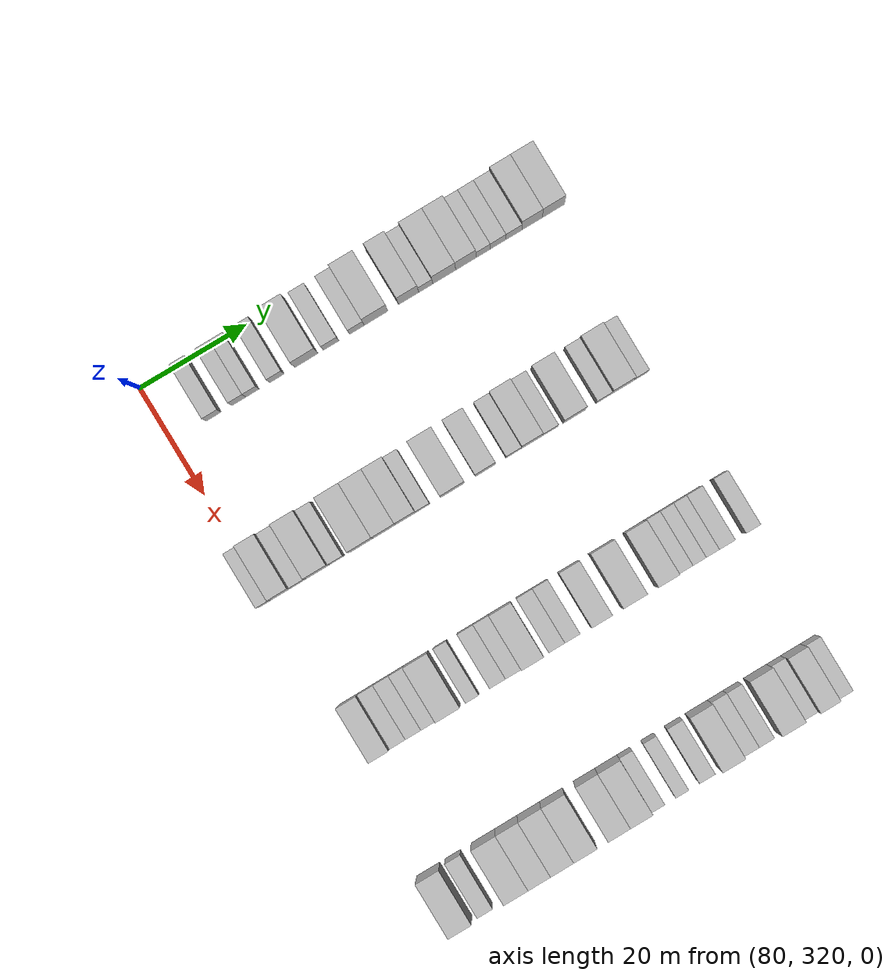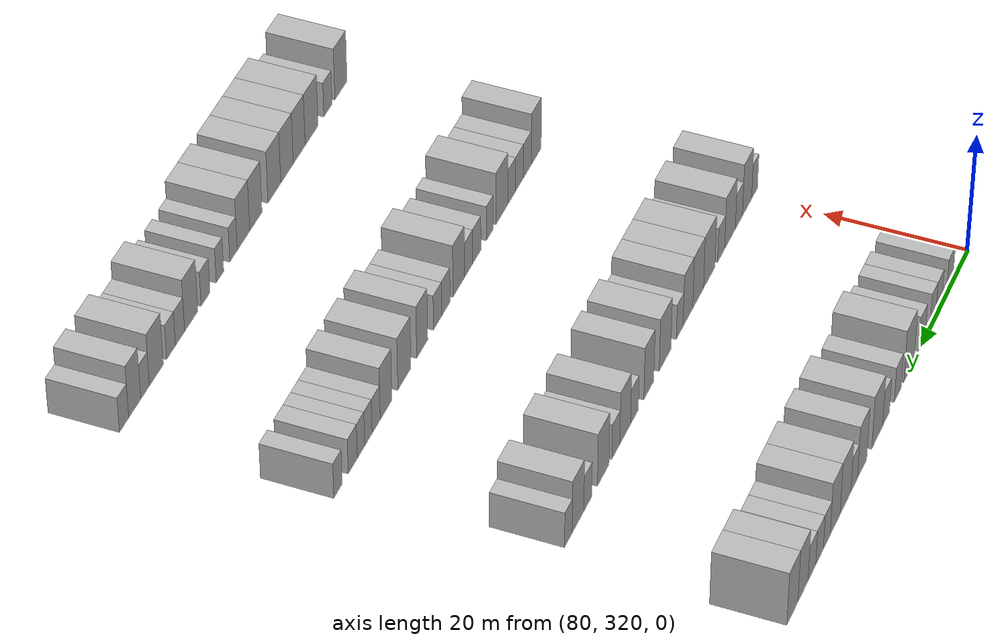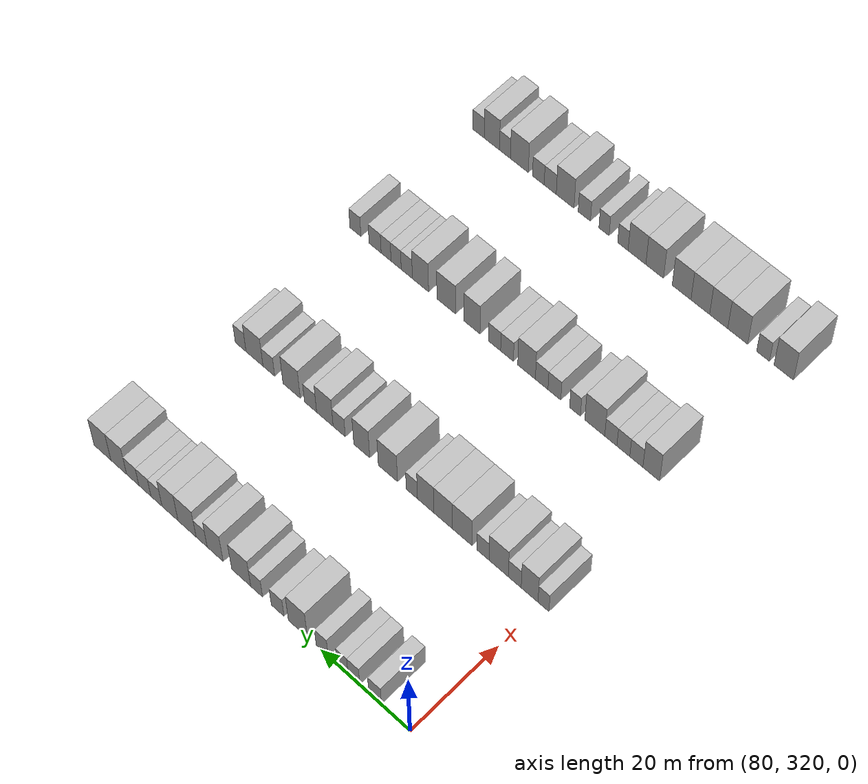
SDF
<sdf version="1.6">
 <world name="default">
  <model name="building_653">
   <static>1</static>
   <pose>85.0000 327.8629 0 0.000000 0.000000 0.000000</pose>
   <link name="link">
    <pose>0 0 3.00 0 0 0</pose>
    <collision name="collision"><geometry><box><size>10.0000 2.8039 6.0000</size></box></geometry></collision>
    <visual name="visual">
     <cast_shadows>0</cast_shadows>
     <geometry><box><size>10.0000 2.8039 6.0000</size></box></geometry>
     <material>
      <script>
       <uri>model://HANNAS_wall/materials/scripts</uri>
       <uri>model://HANNAS_wall/materials/textures</uri>
       <name>vrc/HANNAS_wall</name>
      </script>
     </material>
    </visual>
   </link>
  </model>
  <model name="building_654">
   <static>1</static>
   <pose>85.0000 332.5841 0 0.000000 0.000000 0.000000</pose>
   <link name="link">
    <pose>0 0 3.00 0 0 0</pose>
    <collision name="collision"><geometry><box><size>10.0000 2.6385 6.0000</size></box></geometry></collision>
    <visual name="visual">
     <cast_shadows>0</cast_shadows>
     <geometry><box><size>10.0000 2.6385 6.0000</size></box></geometry>
     <material>
      <script>
       <uri>model://HANNAS_wall/materials/scripts</uri>
       <uri>model://HANNAS_wall/materials/textures</uri>
       <name>vrc/HANNAS_wall</name>
      </script>
     </material>
    </visual>
   </link>
  </model>
  <model name="building_655">
   <static>1</static>
   <pose>85.0000 335.1400 0 0.000000 0.000000 0.000000</pose>
   <link name="link">
    <pose>0 0 3.00 0 0 0</pose>
    <collision name="collision"><geometry><box><size>10.0000 2.4734 6.0000</size></box></geometry></collision>
    <visual name="visual">
     <cast_shadows>0</cast_shadows>
     <geometry><box><size>10.0000 2.4734 6.0000</size></box></geometry>
     <material>
      <script>
       <uri>model://HANNAS_wall/materials/scripts</uri>
       <uri>model://HANNAS_wall/materials/textures</uri>
       <name>vrc/HANNAS_wall</name>
      </script>
     </material>
    </visual>
   </link>
  </model>
  <model name="building_656">
   <static>1</static>
   <pose>85.0000 339.7246 0 0.000000 0.000000 0.000000</pose>
   <link name="link">
    <pose>0 0 3.00 0 0 0</pose>
    <collision name="collision"><geometry><box><size>10.0000 2.6957 6.0000</size></box></geometry></collision>
    <visual name="visual">
     <cast_shadows>0</cast_shadows>
     <geometry><box><size>10.0000 2.6957 6.0000</size></box></geometry>
     <material>
      <script>
       <uri>model://HANNAS_wall/materials/scripts</uri>
       <uri>model://HANNAS_wall/materials/textures</uri>
       <name>vrc/HANNAS_wall</name>
      </script>
     </material>
    </visual>
   </link>
  </model>
  <model name="building_657">
   <static>1</static>
   <pose>85.0000 345.2438 0 0.000000 0.000000 0.000000</pose>
   <link name="link">
    <pose>0 0 4.50 0 0 0</pose>
    <collision name="collision"><geometry><box><size>10.0000 4.3428 9.0000</size></box></geometry></collision>
    <visual name="visual">
     <cast_shadows>0</cast_shadows>
     <geometry><box><size>10.0000 4.3428 9.0000</size></box></geometry>
     <material>
      <script>
       <uri>model://HANNAS_wall/materials/scripts</uri>
       <uri>model://HANNAS_wall/materials/textures</uri>
       <name>vrc/HANNAS_wall</name>
      </script>
     </material>
    </visual>
   </link>
  </model>
  <model name="building_658">
   <static>1</static>
   <pose>85.0000 349.8824 0 0.000000 0.000000 0.000000</pose>
   <link name="link">
    <pose>0 0 3.00 0 0 0</pose>
    <collision name="collision"><geometry><box><size>10.0000 2.9343 6.0000</size></box></geometry></collision>
    <visual name="visual">
     <cast_shadows>0</cast_shadows>
     <geometry><box><size>10.0000 2.9343 6.0000</size></box></geometry>
     <material>
      <script>
       <uri>model://HANNAS_wall/materials/scripts</uri>
       <uri>model://HANNAS_wall/materials/textures</uri>
       <name>vrc/HANNAS_wall</name>
      </script>
     </material>
    </visual>
   </link>
  </model>
  <model name="building_659">
   <static>1</static>
   <pose>85.0000 354.7335 0 0.000000 0.000000 0.000000</pose>
   <link name="link">
    <pose>0 0 3.00 0 0 0</pose>
    <collision name="collision"><geometry><box><size>10.0000 2.7680 6.0000</size></box></geometry></collision>
    <visual name="visual">
     <cast_shadows>0</cast_shadows>
     <geometry><box><size>10.0000 2.7680 6.0000</size></box></geometry>
     <material>
      <script>
       <uri>model://HANNAS_wall/materials/scripts</uri>
       <uri>model://HANNAS_wall/materials/textures</uri>
       <name>vrc/HANNAS_wall</name>
      </script>
     </material>
    </visual>
   </link>
  </model>
  <model name="building_660">
   <static>1</static>
   <pose>85.0000 358.3324 0 0.000000 0.000000 0.000000</pose>
   <link name="link">
    <pose>0 0 4.50 0 0 0</pose>
    <collision name="collision"><geometry><box><size>10.0000 4.4299 9.0000</size></box></geometry></collision>
    <visual name="visual">
     <cast_shadows>0</cast_shadows>
     <geometry><box><size>10.0000 4.4299 9.0000</size></box></geometry>
     <material>
      <script>
       <uri>model://HANNAS_wall/materials/scripts</uri>
       <uri>model://HANNAS_wall/materials/textures</uri>
       <name>vrc/HANNAS_wall</name>
      </script>
     </material>
    </visual>
   </link>
  </model>
  <model name="building_661">
   <static>1</static>
   <pose>85.0000 364.4345 0 0.000000 0.000000 0.000000</pose>
   <link name="link">
    <pose>0 0 4.50 0 0 0</pose>
    <collision name="collision"><geometry><box><size>10.0000 3.7742 9.0000</size></box></geometry></collision>
    <visual name="visual">
     <cast_shadows>0</cast_shadows>
     <geometry><box><size>10.0000 3.7742 9.0000</size></box></geometry>
     <material>
      <script>
       <uri>model://HANNAS_wall/materials/scripts</uri>
       <uri>model://HANNAS_wall/materials/textures</uri>
       <name>vrc/HANNAS_wall</name>
      </script>
     </material>
    </visual>
   </link>
  </model>
  <model name="building_662">
   <static>1</static>
   <pose>85.0000 367.6362 0 0.000000 0.000000 0.000000</pose>
   <link name="link">
    <pose>0 0 3.00 0 0 0</pose>
    <collision name="collision"><geometry><box><size>10.0000 2.6291 6.0000</size></box></geometry></collision>
    <visual name="visual">
     <cast_shadows>0</cast_shadows>
     <geometry><box><size>10.0000 2.6291 6.0000</size></box></geometry>
     <material>
      <script>
       <uri>model://HANNAS_wall/materials/scripts</uri>
       <uri>model://HANNAS_wall/materials/textures</uri>
       <name>vrc/HANNAS_wall</name>
      </script>
     </material>
    </visual>
   </link>
  </model>
  <model name="building_663">
   <static>1</static>
   <pose>85.0000 371.0983 0 0.000000 0.000000 0.000000</pose>
   <link name="link">
    <pose>0 0 4.50 0 0 0</pose>
    <collision name="collision"><geometry><box><size>10.0000 4.2952 9.0000</size></box></geometry></collision>
    <visual name="visual">
     <cast_shadows>0</cast_shadows>
     <geometry><box><size>10.0000 4.2952 9.0000</size></box></geometry>
     <material>
      <script>
       <uri>model://HANNAS_wall/materials/scripts</uri>
       <uri>model://HANNAS_wall/materials/textures</uri>
       <name>vrc/HANNAS_wall</name>
      </script>
     </material>
    </visual>
   </link>
  </model>
  <model name="building_664">
   <static>1</static>
   <pose>85.0000 375.1570 0 0.000000 0.000000 0.000000</pose>
   <link name="link">
    <pose>0 0 4.50 0 0 0</pose>
    <collision name="collision"><geometry><box><size>10.0000 3.8223 9.0000</size></box></geometry></collision>
    <visual name="visual">
     <cast_shadows>0</cast_shadows>
     <geometry><box><size>10.0000 3.8223 9.0000</size></box></geometry>
     <material>
      <script>
       <uri>model://HANNAS_wall/materials/scripts</uri>
       <uri>model://HANNAS_wall/materials/textures</uri>
       <name>vrc/HANNAS_wall</name>
      </script>
     </material>
    </visual>
   </link>
  </model>
  <model name="building_665">
   <static>1</static>
   <pose>85.0000 378.4080 0 0.000000 0.000000 0.000000</pose>
   <link name="link">
    <pose>0 0 3.00 0 0 0</pose>
    <collision name="collision"><geometry><box><size>10.0000 2.6797 6.0000</size></box></geometry></collision>
    <visual name="visual">
     <cast_shadows>0</cast_shadows>
     <geometry><box><size>10.0000 2.6797 6.0000</size></box></geometry>
     <material>
      <script>
       <uri>model://HANNAS_wall/materials/scripts</uri>
       <uri>model://HANNAS_wall/materials/textures</uri>
       <name>vrc/HANNAS_wall</name>
      </script>
     </material>
    </visual>
   </link>
  </model>
  <model name="building_666">
   <static>1</static>
   <pose>85.0000 381.2136 0 0.000000 0.000000 0.000000</pose>
   <link name="link">
    <pose>0 0 3.00 0 0 0</pose>
    <collision name="collision"><geometry><box><size>10.0000 2.9314 6.0000</size></box></geometry></collision>
    <visual name="visual">
     <cast_shadows>0</cast_shadows>
     <geometry><box><size>10.0000 2.9314 6.0000</size></box></geometry>
     <material>
      <script>
       <uri>model://HANNAS_wall/materials/scripts</uri>
       <uri>model://HANNAS_wall/materials/textures</uri>
       <name>vrc/HANNAS_wall</name>
      </script>
     </material>
    </visual>
   </link>
  </model>
  <model name="building_667">
   <static>1</static>
   <pose>85.0000 384.1634 0 0.000000 0.000000 0.000000</pose>
   <link name="link">
    <pose>0 0 3.00 0 0 0</pose>
    <collision name="collision"><geometry><box><size>10.0000 2.9683 6.0000</size></box></geometry></collision>
    <visual name="visual">
     <cast_shadows>0</cast_shadows>
     <geometry><box><size>10.0000 2.9683 6.0000</size></box></geometry>
     <material>
      <script>
       <uri>model://HANNAS_wall/materials/scripts</uri>
       <uri>model://HANNAS_wall/materials/textures</uri>
       <name>vrc/HANNAS_wall</name>
      </script>
     </material>
    </visual>
   </link>
  </model>
  <model name="building_668">
   <static>1</static>
   <pose>85.0000 387.5630 0 0.000000 0.000000 0.000000</pose>
   <link name="link">
    <pose>0 0 4.50 0 0 0</pose>
    <collision name="collision"><geometry><box><size>10.0000 3.8309 9.0000</size></box></geometry></collision>
    <visual name="visual">
     <cast_shadows>0</cast_shadows>
     <geometry><box><size>10.0000 3.8309 9.0000</size></box></geometry>
     <material>
      <script>
       <uri>model://HANNAS_wall/materials/scripts</uri>
       <uri>model://HANNAS_wall/materials/textures</uri>
       <name>vrc/HANNAS_wall</name>
      </script>
     </material>
    </visual>
   </link>
  </model>
  <model name="building_669">
   <static>1</static>
   <pose>85.0000 391.5540 0 0.000000 0.000000 0.000000</pose>
   <link name="link">
    <pose>0 0 4.50 0 0 0</pose>
    <collision name="collision"><geometry><box><size>10.0000 4.1510 9.0000</size></box></geometry></collision>
    <visual name="visual">
     <cast_shadows>0</cast_shadows>
     <geometry><box><size>10.0000 4.1510 9.0000</size></box></geometry>
     <material>
      <script>
       <uri>model://HANNAS_wall/materials/scripts</uri>
       <uri>model://HANNAS_wall/materials/textures</uri>
       <name>vrc/HANNAS_wall</name>
      </script>
     </material>
    </visual>
   </link>
  </model>
  <model name="building_874">
   <static>1</static>
   <pose>115.0000 319.4420 0 0.000000 0.000000 0.000000</pose>
   <link name="link">
    <pose>0 0 3.00 0 0 0</pose>
    <collision name="collision"><geometry><box><size>10.0000 2.4111 6.0000</size></box></geometry></collision>
    <visual name="visual">
     <cast_shadows>0</cast_shadows>
     <geometry><box><size>10.0000 2.4111 6.0000</size></box></geometry>
     <material>
      <script>
       <uri>model://HANNAS_wall/materials/scripts</uri>
       <uri>model://HANNAS_wall/materials/textures</uri>
       <name>vrc/HANNAS_wall</name>
      </script>
     </material>
    </visual>
   </link>
  </model>
  <model name="building_875">
   <static>1</static>
   <pose>115.0000 322.5029 0 0.000000 0.000000 0.000000</pose>
   <link name="link">
    <pose>0 0 4.50 0 0 0</pose>
    <collision name="collision"><geometry><box><size>10.0000 3.7107 9.0000</size></box></geometry></collision>
    <visual name="visual">
     <cast_shadows>0</cast_shadows>
     <geometry><box><size>10.0000 3.7107 9.0000</size></box></geometry>
     <material>
      <script>
       <uri>model://HANNAS_wall/materials/scripts</uri>
       <uri>model://HANNAS_wall/materials/textures</uri>
       <name>vrc/HANNAS_wall</name>
      </script>
     </material>
    </visual>
   </link>
  </model>
  <model name="building_876">
   <static>1</static>
   <pose>115.0000 325.7823 0 0.000000 0.000000 0.000000</pose>
   <link name="link">
    <pose>0 0 3.00 0 0 0</pose>
    <collision name="collision"><geometry><box><size>10.0000 2.8481 6.0000</size></box></geometry></collision>
    <visual name="visual">
     <cast_shadows>0</cast_shadows>
     <geometry><box><size>10.0000 2.8481 6.0000</size></box></geometry>
     <material>
      <script>
       <uri>model://HANNAS_wall/materials/scripts</uri>
       <uri>model://HANNAS_wall/materials/textures</uri>
       <name>vrc/HANNAS_wall</name>
      </script>
     </material>
    </visual>
   </link>
  </model>
  <model name="building_877">
   <static>1</static>
   <pose>115.0000 329.3535 0 0.000000 0.000000 0.000000</pose>
   <link name="link">
    <pose>0 0 4.50 0 0 0</pose>
    <collision name="collision"><geometry><box><size>10.0000 4.2943 9.0000</size></box></geometry></collision>
    <visual name="visual">
     <cast_shadows>0</cast_shadows>
     <geometry><box><size>10.0000 4.2943 9.0000</size></box></geometry>
     <material>
      <script>
       <uri>model://HANNAS_wall/materials/scripts</uri>
       <uri>model://HANNAS_wall/materials/textures</uri>
       <name>vrc/HANNAS_wall</name>
      </script>
     </material>
    </visual>
   </link>
  </model>
  <model name="building_878">
   <static>1</static>
   <pose>115.0000 332.8965 0 0.000000 0.000000 0.000000</pose>
   <link name="link">
    <pose>0 0 3.00 0 0 0</pose>
    <collision name="collision"><geometry><box><size>10.0000 2.7916 6.0000</size></box></geometry></collision>
    <visual name="visual">
     <cast_shadows>0</cast_shadows>
     <geometry><box><size>10.0000 2.7916 6.0000</size></box></geometry>
     <material>
      <script>
       <uri>model://HANNAS_wall/materials/scripts</uri>
       <uri>model://HANNAS_wall/materials/textures</uri>
       <name>vrc/HANNAS_wall</name>
      </script>
     </material>
    </visual>
   </link>
  </model>
  <model name="building_879">
   <static>1</static>
   <pose>115.0000 337.5282 0 0.000000 0.000000 0.000000</pose>
   <link name="link">
    <pose>0 0 4.50 0 0 0</pose>
    <collision name="collision"><geometry><box><size>10.0000 4.4718 9.0000</size></box></geometry></collision>
    <visual name="visual">
     <cast_shadows>0</cast_shadows>
     <geometry><box><size>10.0000 4.4718 9.0000</size></box></geometry>
     <material>
      <script>
       <uri>model://HANNAS_wall/materials/scripts</uri>
       <uri>model://HANNAS_wall/materials/textures</uri>
       <name>vrc/HANNAS_wall</name>
      </script>
     </material>
    </visual>
   </link>
  </model>
  <model name="building_880">
   <static>1</static>
   <pose>115.0000 341.8726 0 0.000000 0.000000 0.000000</pose>
   <link name="link">
    <pose>0 0 4.50 0 0 0</pose>
    <collision name="collision"><geometry><box><size>10.0000 4.2169 9.0000</size></box></geometry></collision>
    <visual name="visual">
     <cast_shadows>0</cast_shadows>
     <geometry><box><size>10.0000 4.2169 9.0000</size></box></geometry>
     <material>
      <script>
       <uri>model://HANNAS_wall/materials/scripts</uri>
       <uri>model://HANNAS_wall/materials/textures</uri>
       <name>vrc/HANNAS_wall</name>
      </script>
     </material>
    </visual>
   </link>
  </model>
  <model name="building_881">
   <static>1</static>
   <pose>115.0000 345.8553 0 0.000000 0.000000 0.000000</pose>
   <link name="link">
    <pose>0 0 4.50 0 0 0</pose>
    <collision name="collision"><geometry><box><size>10.0000 3.7484 9.0000</size></box></geometry></collision>
    <visual name="visual">
     <cast_shadows>0</cast_shadows>
     <geometry><box><size>10.0000 3.7484 9.0000</size></box></geometry>
     <material>
      <script>
       <uri>model://HANNAS_wall/materials/scripts</uri>
       <uri>model://HANNAS_wall/materials/textures</uri>
       <name>vrc/HANNAS_wall</name>
      </script>
     </material>
    </visual>
   </link>
  </model>
  <model name="building_882">
   <static>1</static>
   <pose>115.0000 349.0259 0 0.000000 0.000000 0.000000</pose>
   <link name="link">
    <pose>0 0 3.00 0 0 0</pose>
    <collision name="collision"><geometry><box><size>10.0000 2.5928 6.0000</size></box></geometry></collision>
    <visual name="visual">
     <cast_shadows>0</cast_shadows>
     <geometry><box><size>10.0000 2.5928 6.0000</size></box></geometry>
     <material>
      <script>
       <uri>model://HANNAS_wall/materials/scripts</uri>
       <uri>model://HANNAS_wall/materials/textures</uri>
       <name>vrc/HANNAS_wall</name>
      </script>
     </material>
    </visual>
   </link>
  </model>
  <model name="building_883">
   <static>1</static>
   <pose>115.0000 354.5537 0 0.000000 0.000000 0.000000</pose>
   <link name="link">
    <pose>0 0 4.50 0 0 0</pose>
    <collision name="collision"><geometry><box><size>10.0000 4.4627 9.0000</size></box></geometry></collision>
    <visual name="visual">
     <cast_shadows>0</cast_shadows>
     <geometry><box><size>10.0000 4.4627 9.0000</size></box></geometry>
     <material>
      <script>
       <uri>model://HANNAS_wall/materials/scripts</uri>
       <uri>model://HANNAS_wall/materials/textures</uri>
       <name>vrc/HANNAS_wall</name>
      </script>
     </material>
    </visual>
   </link>
  </model>
  <model name="building_884">
   <static>1</static>
   <pose>115.0000 360.6563 0 0.000000 0.000000 0.000000</pose>
   <link name="link">
    <pose>0 0 4.50 0 0 0</pose>
    <collision name="collision"><geometry><box><size>10.0000 3.7427 9.0000</size></box></geometry></collision>
    <visual name="visual">
     <cast_shadows>0</cast_shadows>
     <geometry><box><size>10.0000 3.7427 9.0000</size></box></geometry>
     <material>
      <script>
       <uri>model://HANNAS_wall/materials/scripts</uri>
       <uri>model://HANNAS_wall/materials/textures</uri>
       <name>vrc/HANNAS_wall</name>
      </script>
     </material>
    </visual>
   </link>
  </model>
  <model name="building_885">
   <static>1</static>
   <pose>115.0000 365.9667 0 0.000000 0.000000 0.000000</pose>
   <link name="link">
    <pose>0 0 3.00 0 0 0</pose>
    <collision name="collision"><geometry><box><size>10.0000 2.8780 6.0000</size></box></geometry></collision>
    <visual name="visual">
     <cast_shadows>0</cast_shadows>
     <geometry><box><size>10.0000 2.8780 6.0000</size></box></geometry>
     <material>
      <script>
       <uri>model://HANNAS_wall/materials/scripts</uri>
       <uri>model://HANNAS_wall/materials/textures</uri>
       <name>vrc/HANNAS_wall</name>
      </script>
     </material>
    </visual>
   </link>
  </model>
  <model name="building_886">
   <static>1</static>
   <pose>115.0000 369.3741 0 0.000000 0.000000 0.000000</pose>
   <link name="link">
    <pose>0 0 4.50 0 0 0</pose>
    <collision name="collision"><geometry><box><size>10.0000 3.9368 9.0000</size></box></geometry></collision>
    <visual name="visual">
     <cast_shadows>0</cast_shadows>
     <geometry><box><size>10.0000 3.9368 9.0000</size></box></geometry>
     <material>
      <script>
       <uri>model://HANNAS_wall/materials/scripts</uri>
       <uri>model://HANNAS_wall/materials/textures</uri>
       <name>vrc/HANNAS_wall</name>
      </script>
     </material>
    </visual>
   </link>
  </model>
  <model name="building_887">
   <static>1</static>
   <pose>115.0000 372.7899 0 0.000000 0.000000 0.000000</pose>
   <link name="link">
    <pose>0 0 3.00 0 0 0</pose>
    <collision name="collision"><geometry><box><size>10.0000 2.8949 6.0000</size></box></geometry></collision>
    <visual name="visual">
     <cast_shadows>0</cast_shadows>
     <geometry><box><size>10.0000 2.8949 6.0000</size></box></geometry>
     <material>
      <script>
       <uri>model://HANNAS_wall/materials/scripts</uri>
       <uri>model://HANNAS_wall/materials/textures</uri>
       <name>vrc/HANNAS_wall</name>
      </script>
     </material>
    </visual>
   </link>
  </model>
  <model name="building_888">
   <static>1</static>
   <pose>115.0000 377.3226 0 0.000000 0.000000 0.000000</pose>
   <link name="link">
    <pose>0 0 4.50 0 0 0</pose>
    <collision name="collision"><geometry><box><size>10.0000 4.1705 9.0000</size></box></geometry></collision>
    <visual name="visual">
     <cast_shadows>0</cast_shadows>
     <geometry><box><size>10.0000 4.1705 9.0000</size></box></geometry>
     <material>
      <script>
       <uri>model://HANNAS_wall/materials/scripts</uri>
       <uri>model://HANNAS_wall/materials/textures</uri>
       <name>vrc/HANNAS_wall</name>
      </script>
     </material>
    </visual>
   </link>
  </model>
  <model name="building_889">
   <static>1</static>
   <pose>115.0000 382.8236 0 0.000000 0.000000 0.000000</pose>
   <link name="link">
    <pose>0 0 3.00 0 0 0</pose>
    <collision name="collision"><geometry><box><size>10.0000 2.8314 6.0000</size></box></geometry></collision>
    <visual name="visual">
     <cast_shadows>0</cast_shadows>
     <geometry><box><size>10.0000 2.8314 6.0000</size></box></geometry>
     <material>
      <script>
       <uri>model://HANNAS_wall/materials/scripts</uri>
       <uri>model://HANNAS_wall/materials/textures</uri>
       <name>vrc/HANNAS_wall</name>
      </script>
     </material>
    </visual>
   </link>
  </model>
  <model name="building_890">
   <static>1</static>
   <pose>115.0000 386.3095 0 0.000000 0.000000 0.000000</pose>
   <link name="link">
    <pose>0 0 4.50 0 0 0</pose>
    <collision name="collision"><geometry><box><size>10.0000 4.1405 9.0000</size></box></geometry></collision>
    <visual name="visual">
     <cast_shadows>0</cast_shadows>
     <geometry><box><size>10.0000 4.1405 9.0000</size></box></geometry>
     <material>
      <script>
       <uri>model://HANNAS_wall/materials/scripts</uri>
       <uri>model://HANNAS_wall/materials/textures</uri>
       <name>vrc/HANNAS_wall</name>
      </script>
     </material>
    </visual>
   </link>
  </model>
  <model name="building_891">
   <static>1</static>
   <pose>115.0000 389.6946 0 0.000000 0.000000 0.000000</pose>
   <link name="link">
    <pose>0 0 3.00 0 0 0</pose>
    <collision name="collision"><geometry><box><size>10.0000 2.6297 6.0000</size></box></geometry></collision>
    <visual name="visual">
     <cast_shadows>0</cast_shadows>
     <geometry><box><size>10.0000 2.6297 6.0000</size></box></geometry>
     <material>
      <script>
       <uri>model://HANNAS_wall/materials/scripts</uri>
       <uri>model://HANNAS_wall/materials/textures</uri>
       <name>vrc/HANNAS_wall</name>
      </script>
     </material>
    </visual>
   </link>
  </model>
  <model name="building_1117">
   <static>1</static>
   <pose>145.0000 322.9769 0 0.000000 0.000000 0.000000</pose>
   <link name="link">
    <pose>0 0 4.50 0 0 0</pose>
    <collision name="collision"><geometry><box><size>10.0000 3.7186 9.0000</size></box></geometry></collision>
    <visual name="visual">
     <cast_shadows>0</cast_shadows>
     <geometry><box><size>10.0000 3.7186 9.0000</size></box></geometry>
     <material>
      <script>
       <uri>model://HANNAS_wall/materials/scripts</uri>
       <uri>model://HANNAS_wall/materials/textures</uri>
       <name>vrc/HANNAS_wall</name>
      </script>
     </material>
    </visual>
   </link>
  </model>
  <model name="building_1118">
   <static>1</static>
   <pose>145.0000 326.2973 0 0.000000 0.000000 0.000000</pose>
   <link name="link">
    <pose>0 0 3.00 0 0 0</pose>
    <collision name="collision"><geometry><box><size>10.0000 2.9222 6.0000</size></box></geometry></collision>
    <visual name="visual">
     <cast_shadows>0</cast_shadows>
     <geometry><box><size>10.0000 2.9222 6.0000</size></box></geometry>
     <material>
      <script>
       <uri>model://HANNAS_wall/materials/scripts</uri>
       <uri>model://HANNAS_wall/materials/textures</uri>
       <name>vrc/HANNAS_wall</name>
      </script>
     </material>
    </visual>
   </link>
  </model>
  <model name="building_1119">
   <static>1</static>
   <pose>145.0000 329.1950 0 0.000000 0.000000 0.000000</pose>
   <link name="link">
    <pose>0 0 3.00 0 0 0</pose>
    <collision name="collision"><geometry><box><size>10.0000 2.8732 6.0000</size></box></geometry></collision>
    <visual name="visual">
     <cast_shadows>0</cast_shadows>
     <geometry><box><size>10.0000 2.8732 6.0000</size></box></geometry>
     <material>
      <script>
       <uri>model://HANNAS_wall/materials/scripts</uri>
       <uri>model://HANNAS_wall/materials/textures</uri>
       <name>vrc/HANNAS_wall</name>
      </script>
     </material>
    </visual>
   </link>
  </model>
  <model name="building_1120">
   <static>1</static>
   <pose>145.0000 331.9974 0 0.000000 0.000000 0.000000</pose>
   <link name="link">
    <pose>0 0 3.00 0 0 0</pose>
    <collision name="collision"><geometry><box><size>10.0000 2.7316 6.0000</size></box></geometry></collision>
    <visual name="visual">
     <cast_shadows>0</cast_shadows>
     <geometry><box><size>10.0000 2.7316 6.0000</size></box></geometry>
     <material>
      <script>
       <uri>model://HANNAS_wall/materials/scripts</uri>
       <uri>model://HANNAS_wall/materials/textures</uri>
       <name>vrc/HANNAS_wall</name>
      </script>
     </material>
    </visual>
   </link>
  </model>
  <model name="building_1121">
   <static>1</static>
   <pose>145.0000 335.6110 0 0.000000 0.000000 0.000000</pose>
   <link name="link">
    <pose>0 0 4.50 0 0 0</pose>
    <collision name="collision"><geometry><box><size>10.0000 4.4956 9.0000</size></box></geometry></collision>
    <visual name="visual">
     <cast_shadows>0</cast_shadows>
     <geometry><box><size>10.0000 4.4956 9.0000</size></box></geometry>
     <material>
      <script>
       <uri>model://HANNAS_wall/materials/scripts</uri>
       <uri>model://HANNAS_wall/materials/textures</uri>
       <name>vrc/HANNAS_wall</name>
      </script>
     </material>
    </visual>
   </link>
  </model>
  <model name="building_1122">
   <static>1</static>
   <pose>145.0000 340.0870 0 0.000000 0.000000 0.000000</pose>
   <link name="link">
    <pose>0 0 3.00 0 0 0</pose>
    <collision name="collision"><geometry><box><size>10.0000 2.4566 6.0000</size></box></geometry></collision>
    <visual name="visual">
     <cast_shadows>0</cast_shadows>
     <geometry><box><size>10.0000 2.4566 6.0000</size></box></geometry>
     <material>
      <script>
       <uri>model://HANNAS_wall/materials/scripts</uri>
       <uri>model://HANNAS_wall/materials/textures</uri>
       <name>vrc/HANNAS_wall</name>
      </script>
     </material>
    </visual>
   </link>
  </model>
  <model name="building_1123">
   <static>1</static>
   <pose>145.0000 344.7889 0 0.000000 0.000000 0.000000</pose>
   <link name="link">
    <pose>0 0 3.00 0 0 0</pose>
    <collision name="collision"><geometry><box><size>10.0000 2.9472 6.0000</size></box></geometry></collision>
    <visual name="visual">
     <cast_shadows>0</cast_shadows>
     <geometry><box><size>10.0000 2.9472 6.0000</size></box></geometry>
     <material>
      <script>
       <uri>model://HANNAS_wall/materials/scripts</uri>
       <uri>model://HANNAS_wall/materials/textures</uri>
       <name>vrc/HANNAS_wall</name>
      </script>
     </material>
    </visual>
   </link>
  </model>
  <model name="building_1124">
   <static>1</static>
   <pose>145.0000 347.7125 0 0.000000 0.000000 0.000000</pose>
   <link name="link">
    <pose>0 0 3.00 0 0 0</pose>
    <collision name="collision"><geometry><box><size>10.0000 2.8999 6.0000</size></box></geometry></collision>
    <visual name="visual">
     <cast_shadows>0</cast_shadows>
     <geometry><box><size>10.0000 2.8999 6.0000</size></box></geometry>
     <material>
      <script>
       <uri>model://HANNAS_wall/materials/scripts</uri>
       <uri>model://HANNAS_wall/materials/textures</uri>
       <name>vrc/HANNAS_wall</name>
      </script>
     </material>
    </visual>
   </link>
  </model>
  <model name="building_1125">
   <static>1</static>
   <pose>145.0000 351.2035 0 0.000000 0.000000 0.000000</pose>
   <link name="link">
    <pose>0 0 4.50 0 0 0</pose>
    <collision name="collision"><geometry><box><size>10.0000 4.0821 9.0000</size></box></geometry></collision>
    <visual name="visual">
     <cast_shadows>0</cast_shadows>
     <geometry><box><size>10.0000 4.0821 9.0000</size></box></geometry>
     <material>
      <script>
       <uri>model://HANNAS_wall/materials/scripts</uri>
       <uri>model://HANNAS_wall/materials/textures</uri>
       <name>vrc/HANNAS_wall</name>
      </script>
     </material>
    </visual>
   </link>
  </model>
  <model name="building_1126">
   <static>1</static>
   <pose>145.0000 355.7361 0 0.000000 0.000000 0.000000</pose>
   <link name="link">
    <pose>0 0 3.00 0 0 0</pose>
    <collision name="collision"><geometry><box><size>10.0000 2.9832 6.0000</size></box></geometry></collision>
    <visual name="visual">
     <cast_shadows>0</cast_shadows>
     <geometry><box><size>10.0000 2.9832 6.0000</size></box></geometry>
     <material>
      <script>
       <uri>model://HANNAS_wall/materials/scripts</uri>
       <uri>model://HANNAS_wall/materials/textures</uri>
       <name>vrc/HANNAS_wall</name>
      </script>
     </material>
    </visual>
   </link>
  </model>
  <model name="building_1127">
   <static>1</static>
   <pose>145.0000 358.6434 0 0.000000 0.000000 0.000000</pose>
   <link name="link">
    <pose>0 0 3.00 0 0 0</pose>
    <collision name="collision"><geometry><box><size>10.0000 2.8314 6.0000</size></box></geometry></collision>
    <visual name="visual">
     <cast_shadows>0</cast_shadows>
     <geometry><box><size>10.0000 2.8314 6.0000</size></box></geometry>
     <material>
      <script>
       <uri>model://HANNAS_wall/materials/scripts</uri>
       <uri>model://HANNAS_wall/materials/textures</uri>
       <name>vrc/HANNAS_wall</name>
      </script>
     </material>
    </visual>
   </link>
  </model>
  <model name="building_1128">
   <static>1</static>
   <pose>145.0000 363.9567 0 0.000000 0.000000 0.000000</pose>
   <link name="link">
    <pose>0 0 4.50 0 0 0</pose>
    <collision name="collision"><geometry><box><size>10.0000 3.7952 9.0000</size></box></geometry></collision>
    <visual name="visual">
     <cast_shadows>0</cast_shadows>
     <geometry><box><size>10.0000 3.7952 9.0000</size></box></geometry>
     <material>
      <script>
       <uri>model://HANNAS_wall/materials/scripts</uri>
       <uri>model://HANNAS_wall/materials/textures</uri>
       <name>vrc/HANNAS_wall</name>
      </script>
     </material>
    </visual>
   </link>
  </model>
  <model name="building_1129">
   <static>1</static>
   <pose>145.0000 370.0640 0 0.000000 0.000000 0.000000</pose>
   <link name="link">
    <pose>0 0 4.50 0 0 0</pose>
    <collision name="collision"><geometry><box><size>10.0000 4.4193 9.0000</size></box></geometry></collision>
    <visual name="visual">
     <cast_shadows>0</cast_shadows>
     <geometry><box><size>10.0000 4.4193 9.0000</size></box></geometry>
     <material>
      <script>
       <uri>model://HANNAS_wall/materials/scripts</uri>
       <uri>model://HANNAS_wall/materials/textures</uri>
       <name>vrc/HANNAS_wall</name>
      </script>
     </material>
    </visual>
   </link>
  </model>
  <model name="building_1130">
   <static>1</static>
   <pose>145.0000 376.2245 0 0.000000 0.000000 0.000000</pose>
   <link name="link">
    <pose>0 0 4.50 0 0 0</pose>
    <collision name="collision"><geometry><box><size>10.0000 3.9018 9.0000</size></box></geometry></collision>
    <visual name="visual">
     <cast_shadows>0</cast_shadows>
     <geometry><box><size>10.0000 3.9018 9.0000</size></box></geometry>
     <material>
      <script>
       <uri>model://HANNAS_wall/materials/scripts</uri>
       <uri>model://HANNAS_wall/materials/textures</uri>
       <name>vrc/HANNAS_wall</name>
      </script>
     </material>
    </visual>
   </link>
  </model>
  <model name="building_1131">
   <static>1</static>
   <pose>145.0000 379.5280 0 0.000000 0.000000 0.000000</pose>
   <link name="link">
    <pose>0 0 3.00 0 0 0</pose>
    <collision name="collision"><geometry><box><size>10.0000 2.7051 6.0000</size></box></geometry></collision>
    <visual name="visual">
     <cast_shadows>0</cast_shadows>
     <geometry><box><size>10.0000 2.7051 6.0000</size></box></geometry>
     <material>
      <script>
       <uri>model://HANNAS_wall/materials/scripts</uri>
       <uri>model://HANNAS_wall/materials/textures</uri>
       <name>vrc/HANNAS_wall</name>
      </script>
     </material>
    </visual>
   </link>
  </model>
  <model name="building_1132">
   <static>1</static>
   <pose>145.0000 382.1107 0 0.000000 0.000000 0.000000</pose>
   <link name="link">
    <pose>0 0 3.00 0 0 0</pose>
    <collision name="collision"><geometry><box><size>10.0000 2.4603 6.0000</size></box></geometry></collision>
    <visual name="visual">
     <cast_shadows>0</cast_shadows>
     <geometry><box><size>10.0000 2.4603 6.0000</size></box></geometry>
     <material>
      <script>
       <uri>model://HANNAS_wall/materials/scripts</uri>
       <uri>model://HANNAS_wall/materials/textures</uri>
       <name>vrc/HANNAS_wall</name>
      </script>
     </material>
    </visual>
   </link>
  </model>
  <model name="building_1133">
   <static>1</static>
   <pose>145.0000 384.5477 0 0.000000 0.000000 0.000000</pose>
   <link name="link">
    <pose>0 0 3.00 0 0 0</pose>
    <collision name="collision"><geometry><box><size>10.0000 2.4138 6.0000</size></box></geometry></collision>
    <visual name="visual">
     <cast_shadows>0</cast_shadows>
     <geometry><box><size>10.0000 2.4138 6.0000</size></box></geometry>
     <material>
      <script>
       <uri>model://HANNAS_wall/materials/scripts</uri>
       <uri>model://HANNAS_wall/materials/textures</uri>
       <name>vrc/HANNAS_wall</name>
      </script>
     </material>
    </visual>
   </link>
  </model>
  <model name="building_1134">
   <static>1</static>
   <pose>145.0000 387.2275 0 0.000000 0.000000 0.000000</pose>
   <link name="link">
    <pose>0 0 3.00 0 0 0</pose>
    <collision name="collision"><geometry><box><size>10.0000 2.9458 6.0000</size></box></geometry></collision>
    <visual name="visual">
     <cast_shadows>0</cast_shadows>
     <geometry><box><size>10.0000 2.9458 6.0000</size></box></geometry>
     <material>
      <script>
       <uri>model://HANNAS_wall/materials/scripts</uri>
       <uri>model://HANNAS_wall/materials/textures</uri>
       <name>vrc/HANNAS_wall</name>
      </script>
     </material>
    </visual>
   </link>
  </model>
  <model name="building_1135">
   <static>1</static>
   <pose>145.0000 392.0460 0 0.000000 0.000000 0.000000</pose>
   <link name="link">
    <pose>0 0 3.00 0 0 0</pose>
    <collision name="collision"><geometry><box><size>10.0000 2.6912 6.0000</size></box></geometry></collision>
    <visual name="visual">
     <cast_shadows>0</cast_shadows>
     <geometry><box><size>10.0000 2.6912 6.0000</size></box></geometry>
     <material>
      <script>
       <uri>model://HANNAS_wall/materials/scripts</uri>
       <uri>model://HANNAS_wall/materials/textures</uri>
       <name>vrc/HANNAS_wall</name>
      </script>
     </material>
    </visual>
   </link>
  </model>
  <model name="building_1341">
   <static>1</static>
   <pose>175.0000 319.6990 0 0.000000 0.000000 0.000000</pose>
   <link name="link">
    <pose>0 0 4.50 0 0 0</pose>
    <collision name="collision"><geometry><box><size>10.0000 4.3067 9.0000</size></box></geometry></collision>
    <visual name="visual">
     <cast_shadows>0</cast_shadows>
     <geometry><box><size>10.0000 4.3067 9.0000</size></box></geometry>
     <material>
      <script>
       <uri>model://HANNAS_wall/materials/scripts</uri>
       <uri>model://HANNAS_wall/materials/textures</uri>
       <name>vrc/HANNAS_wall</name>
      </script>
     </material>
    </visual>
   </link>
  </model>
  <model name="building_1342">
   <static>1</static>
   <pose>175.0000 324.2877 0 0.000000 0.000000 0.000000</pose>
   <link name="link">
    <pose>0 0 3.00 0 0 0</pose>
    <collision name="collision"><geometry><box><size>10.0000 2.8707 6.0000</size></box></geometry></collision>
    <visual name="visual">
     <cast_shadows>0</cast_shadows>
     <geometry><box><size>10.0000 2.8707 6.0000</size></box></geometry>
     <material>
      <script>
       <uri>model://HANNAS_wall/materials/scripts</uri>
       <uri>model://HANNAS_wall/materials/textures</uri>
       <name>vrc/HANNAS_wall</name>
      </script>
     </material>
    </visual>
   </link>
  </model>
  <model name="building_1343">
   <static>1</static>
   <pose>175.0000 329.9648 0 0.000000 0.000000 0.000000</pose>
   <link name="link">
    <pose>0 0 4.50 0 0 0</pose>
    <collision name="collision"><geometry><box><size>10.0000 4.4834 9.0000</size></box></geometry></collision>
    <visual name="visual">
     <cast_shadows>0</cast_shadows>
     <geometry><box><size>10.0000 4.4834 9.0000</size></box></geometry>
     <material>
      <script>
       <uri>model://HANNAS_wall/materials/scripts</uri>
       <uri>model://HANNAS_wall/materials/textures</uri>
       <name>vrc/HANNAS_wall</name>
      </script>
     </material>
    </visual>
   </link>
  </model>
  <model name="building_1344">
   <static>1</static>
   <pose>175.0000 334.2656 0 0.000000 0.000000 0.000000</pose>
   <link name="link">
    <pose>0 0 4.50 0 0 0</pose>
    <collision name="collision"><geometry><box><size>10.0000 4.1181 9.0000</size></box></geometry></collision>
    <visual name="visual">
     <cast_shadows>0</cast_shadows>
     <geometry><box><size>10.0000 4.1181 9.0000</size></box></geometry>
     <material>
      <script>
       <uri>model://HANNAS_wall/materials/scripts</uri>
       <uri>model://HANNAS_wall/materials/textures</uri>
       <name>vrc/HANNAS_wall</name>
      </script>
     </material>
    </visual>
   </link>
  </model>
  <model name="building_1345">
   <static>1</static>
   <pose>175.0000 338.4460 0 0.000000 0.000000 0.000000</pose>
   <link name="link">
    <pose>0 0 4.50 0 0 0</pose>
    <collision name="collision"><geometry><box><size>10.0000 4.2427 9.0000</size></box></geometry></collision>
    <visual name="visual">
     <cast_shadows>0</cast_shadows>
     <geometry><box><size>10.0000 4.2427 9.0000</size></box></geometry>
     <material>
      <script>
       <uri>model://HANNAS_wall/materials/scripts</uri>
       <uri>model://HANNAS_wall/materials/textures</uri>
       <name>vrc/HANNAS_wall</name>
      </script>
     </material>
    </visual>
   </link>
  </model>
  <model name="building_1346">
   <static>1</static>
   <pose>175.0000 342.7190 0 0.000000 0.000000 0.000000</pose>
   <link name="link">
    <pose>0 0 4.50 0 0 0</pose>
    <collision name="collision"><geometry><box><size>10.0000 4.3034 9.0000</size></box></geometry></collision>
    <visual name="visual">
     <cast_shadows>0</cast_shadows>
     <geometry><box><size>10.0000 4.3034 9.0000</size></box></geometry>
     <material>
      <script>
       <uri>model://HANNAS_wall/materials/scripts</uri>
       <uri>model://HANNAS_wall/materials/textures</uri>
       <name>vrc/HANNAS_wall</name>
      </script>
     </material>
    </visual>
   </link>
  </model>
  <model name="building_1347">
   <static>1</static>
   <pose>175.0000 348.9098 0 0.000000 0.000000 0.000000</pose>
   <link name="link">
    <pose>0 0 4.50 0 0 0</pose>
    <collision name="collision"><geometry><box><size>10.0000 4.0782 9.0000</size></box></geometry></collision>
    <visual name="visual">
     <cast_shadows>0</cast_shadows>
     <geometry><box><size>10.0000 4.0782 9.0000</size></box></geometry>
     <material>
      <script>
       <uri>model://HANNAS_wall/materials/scripts</uri>
       <uri>model://HANNAS_wall/materials/textures</uri>
       <name>vrc/HANNAS_wall</name>
      </script>
     </material>
    </visual>
   </link>
  </model>
  <model name="building_1348">
   <static>1</static>
   <pose>175.0000 353.0231 0 0.000000 0.000000 0.000000</pose>
   <link name="link">
    <pose>0 0 4.50 0 0 0</pose>
    <collision name="collision"><geometry><box><size>10.0000 4.1485 9.0000</size></box></geometry></collision>
    <visual name="visual">
     <cast_shadows>0</cast_shadows>
     <geometry><box><size>10.0000 4.1485 9.0000</size></box></geometry>
     <material>
      <script>
       <uri>model://HANNAS_wall/materials/scripts</uri>
       <uri>model://HANNAS_wall/materials/textures</uri>
       <name>vrc/HANNAS_wall</name>
      </script>
     </material>
    </visual>
   </link>
  </model>
  <model name="building_1349">
   <static>1</static>
   <pose>175.0000 356.3145 0 0.000000 0.000000 0.000000</pose>
   <link name="link">
    <pose>0 0 3.00 0 0 0</pose>
    <collision name="collision"><geometry><box><size>10.0000 2.4344 6.0000</size></box></geometry></collision>
    <visual name="visual">
     <cast_shadows>0</cast_shadows>
     <geometry><box><size>10.0000 2.4344 6.0000</size></box></geometry>
     <material>
      <script>
       <uri>model://HANNAS_wall/materials/scripts</uri>
       <uri>model://HANNAS_wall/materials/textures</uri>
       <name>vrc/HANNAS_wall</name>
      </script>
     </material>
    </visual>
   </link>
  </model>
  <model name="building_1350">
   <static>1</static>
   <pose>175.0000 360.7358 0 0.000000 0.000000 0.000000</pose>
   <link name="link">
    <pose>0 0 3.00 0 0 0</pose>
    <collision name="collision"><geometry><box><size>10.0000 2.4082 6.0000</size></box></geometry></collision>
    <visual name="visual">
     <cast_shadows>0</cast_shadows>
     <geometry><box><size>10.0000 2.4082 6.0000</size></box></geometry>
     <material>
      <script>
       <uri>model://HANNAS_wall/materials/scripts</uri>
       <uri>model://HANNAS_wall/materials/textures</uri>
       <name>vrc/HANNAS_wall</name>
      </script>
     </material>
    </visual>
   </link>
  </model>
  <model name="building_1351">
   <static>1</static>
   <pose>175.0000 365.3913 0 0.000000 0.000000 0.000000</pose>
   <link name="link">
    <pose>0 0 3.00 0 0 0</pose>
    <collision name="collision"><geometry><box><size>10.0000 2.9027 6.0000</size></box></geometry></collision>
    <visual name="visual">
     <cast_shadows>0</cast_shadows>
     <geometry><box><size>10.0000 2.9027 6.0000</size></box></geometry>
     <material>
      <script>
       <uri>model://HANNAS_wall/materials/scripts</uri>
       <uri>model://HANNAS_wall/materials/textures</uri>
       <name>vrc/HANNAS_wall</name>
      </script>
     </material>
    </visual>
   </link>
  </model>
  <model name="building_1352">
   <static>1</static>
   <pose>175.0000 369.9617 0 0.000000 0.000000 0.000000</pose>
   <link name="link">
    <pose>0 0 4.50 0 0 0</pose>
    <collision name="collision"><geometry><box><size>10.0000 4.2381 9.0000</size></box></geometry></collision>
    <visual name="visual">
     <cast_shadows>0</cast_shadows>
     <geometry><box><size>10.0000 4.2381 9.0000</size></box></geometry>
     <material>
      <script>
       <uri>model://HANNAS_wall/materials/scripts</uri>
       <uri>model://HANNAS_wall/materials/textures</uri>
       <name>vrc/HANNAS_wall</name>
      </script>
     </material>
    </visual>
   </link>
  </model>
  <model name="building_1353">
   <static>1</static>
   <pose>175.0000 373.5294 0 0.000000 0.000000 0.000000</pose>
   <link name="link">
    <pose>0 0 3.00 0 0 0</pose>
    <collision name="collision"><geometry><box><size>10.0000 2.8973 6.0000</size></box></geometry></collision>
    <visual name="visual">
     <cast_shadows>0</cast_shadows>
     <geometry><box><size>10.0000 2.8973 6.0000</size></box></geometry>
     <material>
      <script>
       <uri>model://HANNAS_wall/materials/scripts</uri>
       <uri>model://HANNAS_wall/materials/textures</uri>
       <name>vrc/HANNAS_wall</name>
      </script>
     </material>
    </visual>
   </link>
  </model>
  <model name="building_1354">
   <static>1</static>
   <pose>175.0000 376.3830 0 0.000000 0.000000 0.000000</pose>
   <link name="link">
    <pose>0 0 3.00 0 0 0</pose>
    <collision name="collision"><geometry><box><size>10.0000 2.8099 6.0000</size></box></geometry></collision>
    <visual name="visual">
     <cast_shadows>0</cast_shadows>
     <geometry><box><size>10.0000 2.8099 6.0000</size></box></geometry>
     <material>
      <script>
       <uri>model://HANNAS_wall/materials/scripts</uri>
       <uri>model://HANNAS_wall/materials/textures</uri>
       <name>vrc/HANNAS_wall</name>
      </script>
     </material>
    </visual>
   </link>
  </model>
  <model name="building_1355">
   <static>1</static>
   <pose>175.0000 380.9613 0 0.000000 0.000000 0.000000</pose>
   <link name="link">
    <pose>0 0 4.50 0 0 0</pose>
    <collision name="collision"><geometry><box><size>10.0000 4.3467 9.0000</size></box></geometry></collision>
    <visual name="visual">
     <cast_shadows>0</cast_shadows>
     <geometry><box><size>10.0000 4.3467 9.0000</size></box></geometry>
     <material>
      <script>
       <uri>model://HANNAS_wall/materials/scripts</uri>
       <uri>model://HANNAS_wall/materials/textures</uri>
       <name>vrc/HANNAS_wall</name>
      </script>
     </material>
    </visual>
   </link>
  </model>
  <model name="building_1356">
   <static>1</static>
   <pose>175.0000 384.4610 0 0.000000 0.000000 0.000000</pose>
   <link name="link">
    <pose>0 0 3.00 0 0 0</pose>
    <collision name="collision"><geometry><box><size>10.0000 2.6528 6.0000</size></box></geometry></collision>
    <visual name="visual">
     <cast_shadows>0</cast_shadows>
     <geometry><box><size>10.0000 2.6528 6.0000</size></box></geometry>
     <material>
      <script>
       <uri>model://HANNAS_wall/materials/scripts</uri>
       <uri>model://HANNAS_wall/materials/textures</uri>
       <name>vrc/HANNAS_wall</name>
      </script>
     </material>
    </visual>
   </link>
  </model>
  <model name="building_1357">
   <static>1</static>
   <pose>175.0000 387.6345 0 0.000000 0.000000 0.000000</pose>
   <link name="link">
    <pose>0 0 4.50 0 0 0</pose>
    <collision name="collision"><geometry><box><size>10.0000 3.6942 9.0000</size></box></geometry></collision>
    <visual name="visual">
     <cast_shadows>0</cast_shadows>
     <geometry><box><size>10.0000 3.6942 9.0000</size></box></geometry>
     <material>
      <script>
       <uri>model://HANNAS_wall/materials/scripts</uri>
       <uri>model://HANNAS_wall/materials/textures</uri>
       <name>vrc/HANNAS_wall</name>
      </script>
     </material>
    </visual>
   </link>
  </model>
  <model name="building_1358">
   <static>1</static>
   <pose>175.0000 390.8898 0 0.000000 0.000000 0.000000</pose>
   <link name="link">
    <pose>0 0 3.00 0 0 0</pose>
    <collision name="collision"><geometry><box><size>10.0000 2.8164 6.0000</size></box></geometry></collision>
    <visual name="visual">
     <cast_shadows>0</cast_shadows>
     <geometry><box><size>10.0000 2.8164 6.0000</size></box></geometry>
     <material>
      <script>
       <uri>model://HANNAS_wall/materials/scripts</uri>
       <uri>model://HANNAS_wall/materials/textures</uri>
       <name>vrc/HANNAS_wall</name>
      </script>
     </material>
    </visual>
   </link>
  </model>
 </world>
</sdf>
